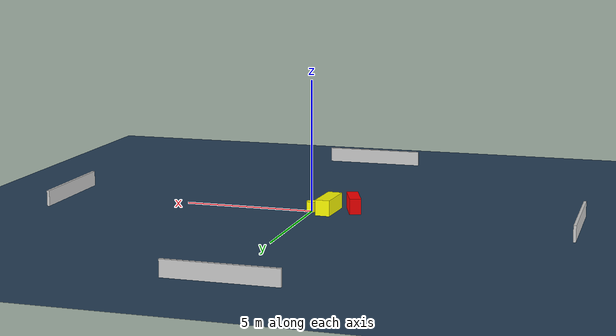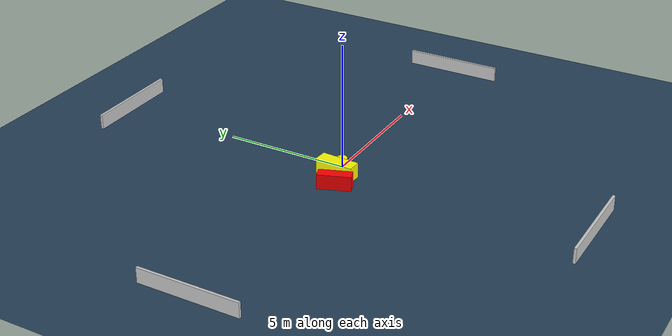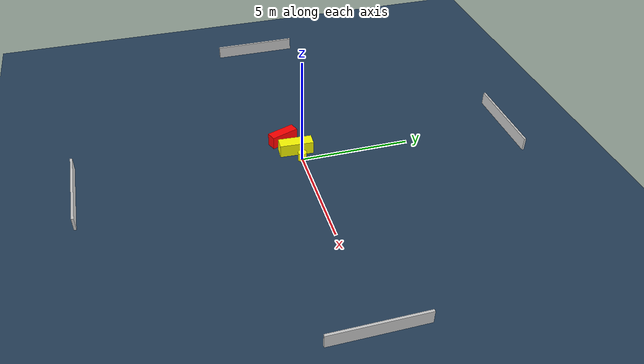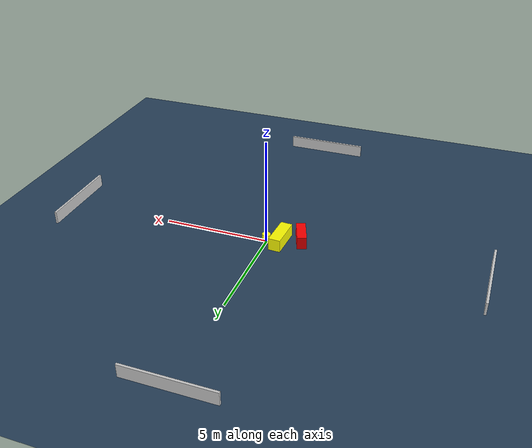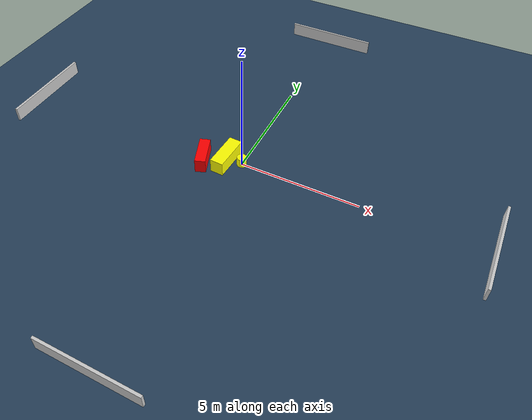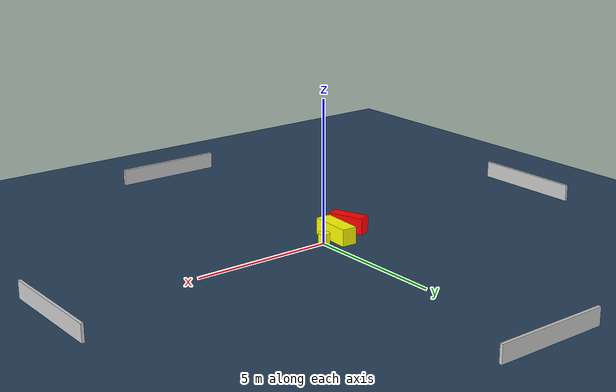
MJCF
<?xml version="1.0" ?>
<mujoco model="generated_environment">
  <option timestep="0.01" integrator="RK4" cone="elliptic"/>
  <default>
    <geom density="1"/>
  </default>
  <asset>
    <texture builtin="gradient" height="3072" name="skybox" rgb1="0.3 0.5 0.7" rgb2="0 0 0" type="skybox" width="512"/>
    <texture builtin="checker" height="300" name="groundplane" rgb1="0.2 0.3 0.4" rgb2="0.1 0.2 0.3" type="2d" width="300"/>
    <material name="groundplane" reflectance="0.2" texrepeat="5 5" texture="groundplane"/>
  </asset>
  <worldbody>
    <light dir="0 0 -1" directional="true" pos="0 0 1.5"/>
    <geom condim="3" friction="0.5 0.005 0.001" material="groundplane" name="floor" pos="0 0 0" size="0 0 0.05" type="plane"/>
    <body name="walls">
      <geom name="wall_1" condim="4" pos="-10.0 0.0 0.3" rgba="0.800000011920929 0.800000011920929 0.800000011920929 1.0" size="0.05 2.0 0.3" type="box"/>
      <geom name="wall_2" condim="4" pos="10.0 0.0 0.3" rgba="0.800000011920929 0.800000011920929 0.800000011920929 1.0" size="0.05 2.0 0.3" type="box"/>
      <geom name="wall_3" condim="4" pos="0.0 -10.0 0.3" rgba="0.800000011920929 0.800000011920929 0.800000011920929 1.0" size="2.0 0.05 0.3" type="box"/>
      <geom name="wall_4" condim="4" pos="0.0 10.0 0.3" rgba="0.800000011920929 0.800000011920929 0.800000011920929 1.0" size="2.0 0.05 0.3" type="box"/>
    </body>
    <body name="robot">
      <joint name="joint_x" type="slide" pos="0 0 0" axis="1 0 0"/>
      <joint name="joint_y" type="slide" pos="0 0 0" axis="0 1 0"/>
      <geom name="robot" type="cylinder" pos="0.0 0.0 0.2" size="0.2 0.2 0.0" mass="5.0" friction="1.0 0.005 0.0001" condim="4" rgba="1.0 1.0 0.0 1.0"/>
    </body>
    <body name="obstacle_1_movable">
      <geom name="obstacle_1_movable" condim="4" pos="-0.6335343034712716 -0.13369444310874534 0.3" euler="0 0 176.99155881765202" friction="0.0 0.005 0.001" rgba="1.0 1.0 0.0 1.0" size="0.27731716668080963 0.7677480004999535 0.3" type="box" mass="0.1"/>
      <joint type="free"/>
    </body>
    <body name="obstacle_2_static">
      <geom name="obstacle_2_static" condim="4" pos="-1.5034655863651516 -0.5308149660754562 0.3" euler="0 0 109.99134013251427" friction="0.0 0.005 0.001" rgba="1.0 0.0 0.0 1.0" size="0.652286030131162 0.22045921529996174 0.3" type="box"/>
    </body>
  </worldbody>
  <actuator>
    <motor name="actuator_x" joint="joint_x" gear="1" ctrlrange="-1 1"/>
    <motor name="actuator_y" joint="joint_y" gear="1" ctrlrange="-1 1"/>
  </actuator>
</mujoco>
